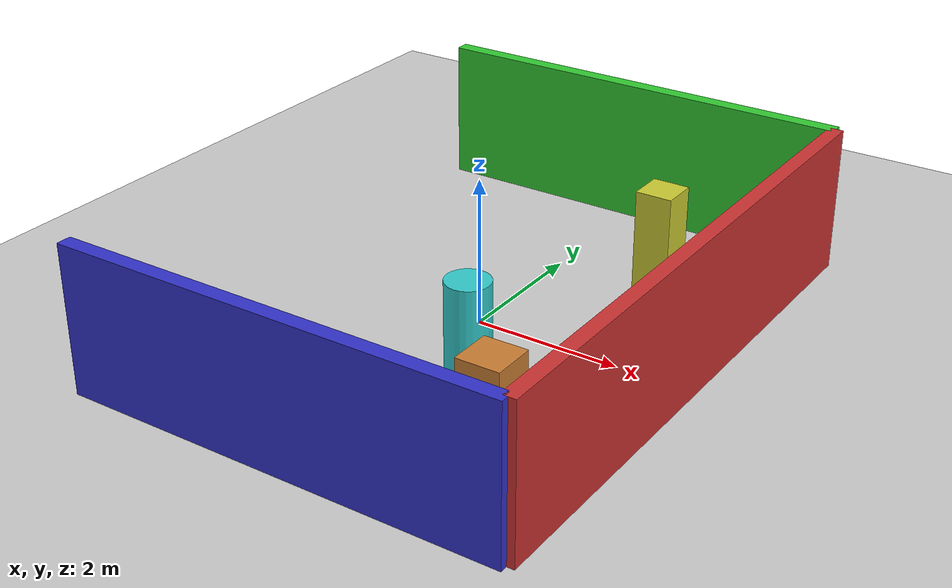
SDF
<?xml version="1.0"?>
<sdf version="1.6">
  <world name="3d_slam_world">

    <!-- Physics -->
    <physics type="ode">
      <max_step_size>0.001</max_step_size>
      <real_time_factor>1</real_time_factor>
      <real_time_update_rate>1000</real_time_update_rate>
    </physics>

    <!-- Lighting -->
    <include>
      <uri>model://sun</uri>
    </include>

    <!-- Ground Plane -->
    <include>
      <uri>model://ground_plane</uri>
    </include>

    <!-- Wall 1 - Front -->
    <model name="wall_front">
      <static>true</static>
      <link name="link">
        <pose>3 0 1 0 0 0</pose>
        <collision name="collision">
          <geometry>
            <box>
              <size>0.2 8 2</size>
            </box>
          </geometry>
        </collision>
        <visual name="visual">
          <geometry>
            <box>
              <size>0.2 8 2</size>
            </box>
          </geometry>
          <material>
            <ambient>0.8 0.2 0.2 1</ambient>
            <diffuse>0.8 0.2 0.2 1</diffuse>
          </material>
        </visual>
      </link>
    </model>

    <!-- Wall 2 - Left -->
    <model name="wall_left">
      <static>true</static>
      <link name="link">
        <pose>0 4 1 0 0 0</pose>
        <collision name="collision">
          <geometry>
            <box>
              <size>6 0.2 2</size>
            </box>
          </geometry>
        </collision>
        <visual name="visual">
          <geometry>
            <box>
              <size>6 0.2 2</size>
            </box>
          </geometry>
          <material>
            <ambient>0.2 0.8 0.2 1</ambient>
            <diffuse>0.2 0.8 0.2 1</diffuse>
          </material>
        </visual>
      </link>
    </model>

    <!-- Wall 3 - Right -->
    <model name="wall_right">
      <static>true</static>
      <link name="link">
        <pose>0 -4 1 0 0 0</pose>
        <collision name="collision">
          <geometry>
            <box>
              <size>6 0.2 2</size>
            </box>
          </geometry>
        </collision>
        <visual name="visual">
          <geometry>
            <box>
              <size>6 0.2 2</size>
            </box>
          </geometry>
          <material>
            <ambient>0.2 0.2 0.8 1</ambient>
            <diffuse>0.2 0.2 0.8 1</diffuse>
          </material>
        </visual>
      </link>
    </model>

    <!-- Tall Box 1 -->
    <model name="tall_box_1">
      <static>true</static>
      <link name="link">
        <pose>1.5 2 0.75 0 0 0</pose>
        <collision name="collision">
          <geometry>
            <box>
              <size>0.5 0.5 1.5</size>
            </box>
          </geometry>
        </collision>
        <visual name="visual">
          <geometry>
            <box>
              <size>0.5 0.5 1.5</size>
            </box>
          </geometry>
          <material>
            <ambient>0.8 0.8 0.2 1</ambient>
            <diffuse>0.8 0.8 0.2 1</diffuse>
          </material>
        </visual>
      </link>
    </model>

    <!-- Medium Box 1 -->
    <model name="medium_box_1">
      <static>true</static>
      <link name="link">
        <pose>1.5 -2 0.5 0 0 0</pose>
        <collision name="collision">
          <geometry>
            <box>
              <size>0.6 0.6 1.0</size>
            </box>
          </geometry>
        </collision>
        <visual name="visual">
          <geometry>
            <box>
              <size>0.6 0.6 1.0</size>
            </box>
          </geometry>
          <material>
            <ambient>0.8 0.5 0.2 1</ambient>
            <diffuse>0.8 0.5 0.2 1</diffuse>
          </material>
        </visual>
      </link>
    </model>

    <!-- Cylinder Obstacle -->
    <model name="cylinder_1">
      <static>true</static>
      <link name="link">
        <pose>0.5 -1 0.6 0 0 0</pose>
        <collision name="collision">
          <geometry>
            <cylinder>
              <radius>0.3</radius>
              <length>1.2</length>
            </cylinder>
          </geometry>
        </collision>
        <visual name="visual">
          <geometry>
            <cylinder>
              <radius>0.3</radius>
              <length>1.2</length>
            </cylinder>
          </geometry>
          <material>
            <ambient>0.2 0.8 0.8 1</ambient>
            <diffuse>0.2 0.8 0.8 1</diffuse>
          </material>
        </visual>
      </link>
    </model>

  </world>
</sdf>
